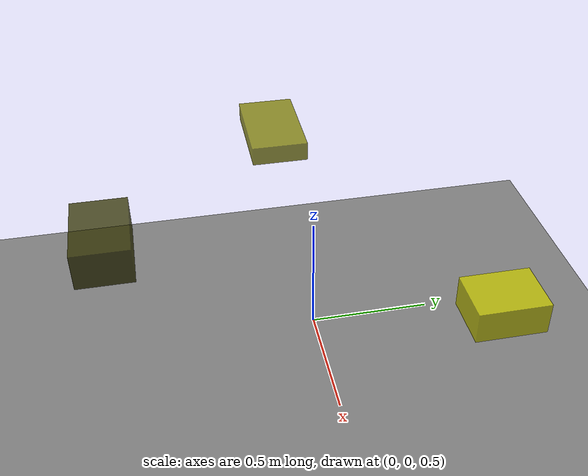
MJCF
<?xml version="1.0"?>
<mujoco model="obstacle_scene">
  <compiler angle="radian" coordinate="local"/>
  <option timestep="0.001" gravity="0 0 -9.81"/>

  <asset>
    <material name="obstacle_mat" rgba="0.8 0.8 0.0 0.8"/>
    <material name="ground_mat" rgba="0.5 0.5 0.5 1"/>
  </asset>

  <worldbody>
    <!-- Ground plane -->
    <geom name="ground" type="plane" size="3 3 0.1" material="ground_mat"/>

    <!-- Obstacles -->
    <body name="obstacle_0" pos="-0.025868 -0.823413 1.030311">
      <geom name="obs_0" type="box" size="0.173347 0.113098 0.075811" rgba="0.2 0.2 0.0 0.8"/>
    </body>
    <body name="obstacle_1" pos="-0.623348 -0.058902 1.091236">
      <geom name="obs_1" type="box" size="0.203945 0.118982 0.040227" rgba="0.5 0.5 0.0 0.8"/>
    </body>
    <body name="obstacle_2" pos="0.307433 0.714158 0.727259">
      <geom name="obs_2" type="box" size="0.118328 0.151353 0.070777" rgba="0.8 0.8 0.0 0.8"/>
    </body>
  </worldbody>
</mujoco>
